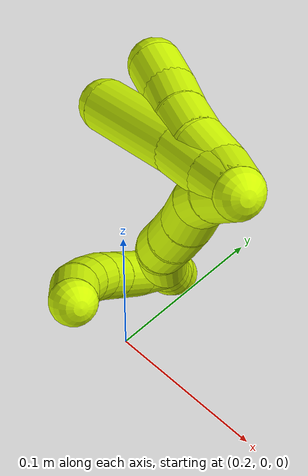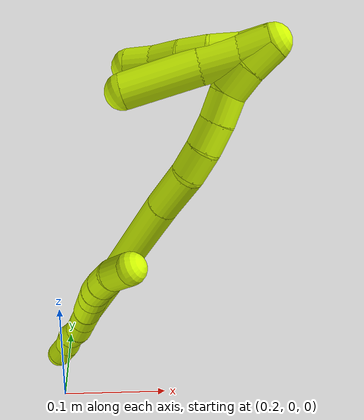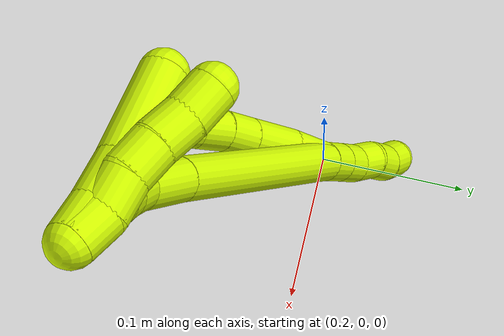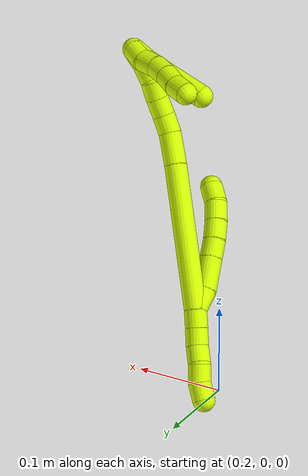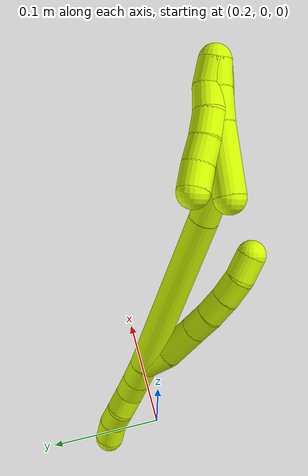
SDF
<sdf version="1.7">
 <world name="default">
  <model name="15">
   <static>0</static>
   <link name="15">
    <collision name="collision-cylinder-e_1_2_8">
     <pose>0.009753 -0.004963 0.007094 0.610483 0.844768 0.281353</pose>
     <geometry><cylinder><radius>0.0125</radius><length>0.026083</length></cylinder></geometry>
     <surface>
      <friction><ode><mu>1.16</mu><mu2>1.16</mu2><slip1>0</slip1><slip2>0</slip2></ode></friction>
      <contact><ode><kp>1e+06</kp><kd>1</kd><max_vel>0</max_vel><min_depth>0.001</min_depth></ode></contact>
     </surface>
    </collision>
    <visual name="visual-cylinder-e_1_2_8">
     <pose>0.009753 -0.004963 0.007094 0.610483 0.844768 0.281353</pose>
     <geometry><cylinder><radius>0.0125</radius><length>0.026083</length></cylinder></geometry>
     <material><ambient>0.835294 1 0 1</ambient></material>
    </visual>
    <collision name="collision-cylinder-e_2_8_9">
     <pose>0.028893 -0.01855 0.027599 0.571433 0.532168 0.159782</pose>
     <geometry><cylinder><radius>0.0125</radius><length>0.037003</length></cylinder></geometry>
     <surface>
      <friction><ode><mu>1.16</mu><mu2>1.16</mu2><slip1>0</slip1><slip2>0</slip2></ode></friction>
      <contact><ode><kp>1e+06</kp><kd>1</kd><max_vel>0</max_vel><min_depth>0.001</min_depth></ode></contact>
     </surface>
    </collision>
    <visual name="visual-cylinder-e_2_8_9">
     <pose>0.028893 -0.01855 0.027599 0.571433 0.532168 0.159782</pose>
     <geometry><cylinder><radius>0.0125</radius><length>0.037003</length></cylinder></geometry>
     <material><ambient>0.835294 1 0 1</ambient></material>
    </visual>
    <collision name="collision-cylinder-e_3_9_10">
     <pose>0.043757 -0.032136 0.04864 0.576705 0.541503 0.164293</pose>
     <geometry><cylinder><radius>0.0125</radius><length>0.021247</length></cylinder></geometry>
     <surface>
      <friction><ode><mu>1.16</mu><mu2>1.16</mu2><slip1>0</slip1><slip2>0</slip2></ode></friction>
      <contact><ode><kp>1e+06</kp><kd>1</kd><max_vel>0</max_vel><min_depth>0.001</min_depth></ode></contact>
     </surface>
    </collision>
    <visual name="visual-cylinder-e_3_9_10">
     <pose>0.043757 -0.032136 0.04864 0.576705 0.541503 0.164293</pose>
     <geometry><cylinder><radius>0.0125</radius><length>0.021247</length></cylinder></geometry>
     <material><ambient>0.835294 1 0 1</ambient></material>
    </visual>
    <collision name="collision-cylinder-e_4_10_11">
     <pose>0.054526 -0.041354 0.064898 0.458173 0.503161 0.119724</pose>
     <geometry><cylinder><radius>0.0125</radius><length>0.021957</length></cylinder></geometry>
     <surface>
      <friction><ode><mu>1.16</mu><mu2>1.16</mu2><slip1>0</slip1><slip2>0</slip2></ode></friction>
      <contact><ode><kp>1e+06</kp><kd>1</kd><max_vel>0</max_vel><min_depth>0.001</min_depth></ode></contact>
     </surface>
    </collision>
    <visual name="visual-cylinder-e_4_10_11">
     <pose>0.054526 -0.041354 0.064898 0.458173 0.503161 0.119724</pose>
     <geometry><cylinder><radius>0.0125</radius><length>0.021957</length></cylinder></geometry>
     <material><ambient>0.835294 1 0 1</ambient></material>
    </visual>
    <collision name="collision-cylinder-e_5_11_12">
     <pose>0.064507 -0.049286 0.082803 0.377352 0.439029 0.085153</pose>
     <geometry><cylinder><radius>0.0125</radius><length>0.022056</length></cylinder></geometry>
     <surface>
      <friction><ode><mu>1.16</mu><mu2>1.16</mu2><slip1>0</slip1><slip2>0</slip2></ode></friction>
      <contact><ode><kp>1e+06</kp><kd>1</kd><max_vel>0</max_vel><min_depth>0.001</min_depth></ode></contact>
     </surface>
    </collision>
    <visual name="visual-cylinder-e_5_11_12">
     <pose>0.064507 -0.049286 0.082803 0.377352 0.439029 0.085153</pose>
     <geometry><cylinder><radius>0.0125</radius><length>0.022056</length></cylinder></geometry>
     <material><ambient>0.835294 1 0 1</ambient></material>
    </visual>
    <collision name="collision-cylinder-e_6_12_6">
     <pose>0.072891 -0.053957 0.102211 0.097731 0.348434 0.017214</pose>
     <geometry><cylinder><radius>0.0125</radius><length>0.021654</length></cylinder></geometry>
     <surface>
      <friction><ode><mu>1.16</mu><mu2>1.16</mu2><slip1>0</slip1><slip2>0</slip2></ode></friction>
      <contact><ode><kp>1e+06</kp><kd>1</kd><max_vel>0</max_vel><min_depth>0.001</min_depth></ode></contact>
     </surface>
    </collision>
    <visual name="visual-cylinder-e_6_12_6">
     <pose>0.072891 -0.053957 0.102211 0.097731 0.348434 0.017214</pose>
     <geometry><cylinder><radius>0.0125</radius><length>0.021654</length></cylinder></geometry>
     <material><ambient>0.835294 1 0 1</ambient></material>
    </visual>
    <collision name="collision-cylinder-e_1_2_13">
     <pose>-0.002311 0.005072 -0.008302 -2.59315 -0.233238 0.789217</pose>
     <geometry><cylinder><radius>0.0125</radius><length>0.02</length></cylinder></geometry>
     <surface>
      <friction><ode><mu>1.16</mu><mu2>1.16</mu2><slip1>0</slip1><slip2>0</slip2></ode></friction>
      <contact><ode><kp>1e+06</kp><kd>1</kd><max_vel>0</max_vel><min_depth>0.001</min_depth></ode></contact>
     </surface>
    </collision>
    <visual name="visual-cylinder-e_1_2_13">
     <pose>-0.002311 0.005072 -0.008302 -2.59315 -0.233238 0.789217</pose>
     <geometry><cylinder><radius>0.0125</radius><length>0.02</length></cylinder></geometry>
     <material><ambient>0.835294 1 0 1</ambient></material>
    </visual>
    <collision name="collision-cylinder-e_2_13_14">
     <pose>-0.007123 0.015297 -0.024802 -2.5805 -0.252721 0.830485</pose>
     <geometry><cylinder><radius>0.0125</radius><length>0.02</length></cylinder></geometry>
     <surface>
      <friction><ode><mu>1.16</mu><mu2>1.16</mu2><slip1>0</slip1><slip2>0</slip2></ode></friction>
      <contact><ode><kp>1e+06</kp><kd>1</kd><max_vel>0</max_vel><min_depth>0.001</min_depth></ode></contact>
     </surface>
    </collision>
    <visual name="visual-cylinder-e_2_13_14">
     <pose>-0.007123 0.015297 -0.024802 -2.5805 -0.252721 0.830485</pose>
     <geometry><cylinder><radius>0.0125</radius><length>0.02</length></cylinder></geometry>
     <material><ambient>0.835294 1 0 1</ambient></material>
    </visual>
    <collision name="collision-cylinder-e_3_14_15">
     <pose>-0.01294 0.023421 -0.041954 -2.82115 -0.338042 1.62522</pose>
     <geometry><cylinder><radius>0.0125</radius><length>0.02</length></cylinder></geometry>
     <surface>
      <friction><ode><mu>1.16</mu><mu2>1.16</mu2><slip1>0</slip1><slip2>0</slip2></ode></friction>
      <contact><ode><kp>1e+06</kp><kd>1</kd><max_vel>0</max_vel><min_depth>0.001</min_depth></ode></contact>
     </surface>
    </collision>
    <visual name="visual-cylinder-e_3_14_15">
     <pose>-0.01294 0.023421 -0.041954 -2.82115 -0.338042 1.62522</pose>
     <geometry><cylinder><radius>0.0125</radius><length>0.02</length></cylinder></geometry>
     <material><ambient>0.835294 1 0 1</ambient></material>
    </visual>
    <collision name="collision-cylinder-e_4_15_16">
     <pose>-0.018841 0.031948 -0.058811 -2.52889 -0.261425 0.787783</pose>
     <geometry><cylinder><radius>0.0125</radius><length>0.02</length></cylinder></geometry>
     <surface>
      <friction><ode><mu>1.16</mu><mu2>1.16</mu2><slip1>0</slip1><slip2>0</slip2></ode></friction>
      <contact><ode><kp>1e+06</kp><kd>1</kd><max_vel>0</max_vel><min_depth>0.001</min_depth></ode></contact>
     </surface>
    </collision>
    <visual name="visual-cylinder-e_4_15_16">
     <pose>-0.018841 0.031948 -0.058811 -2.52889 -0.261425 0.787783</pose>
     <geometry><cylinder><radius>0.0125</radius><length>0.02</length></cylinder></geometry>
     <material><ambient>0.835294 1 0 1</ambient></material>
    </visual>
    <collision name="collision-cylinder-e_5_16_5">
     <pose>-0.022627 0.041384 -0.075851 -2.73994 -0.120432 0.575859</pose>
     <geometry><cylinder><radius>0.0125</radius><length>0.02</length></cylinder></geometry>
     <surface>
      <friction><ode><mu>1.16</mu><mu2>1.16</mu2><slip1>0</slip1><slip2>0</slip2></ode></friction>
      <contact><ode><kp>1e+06</kp><kd>1</kd><max_vel>0</max_vel><min_depth>0.001</min_depth></ode></contact>
     </surface>
    </collision>
    <visual name="visual-cylinder-e_5_16_5">
     <pose>-0.022627 0.041384 -0.075851 -2.73994 -0.120432 0.575859</pose>
     <geometry><cylinder><radius>0.0125</radius><length>0.02</length></cylinder></geometry>
     <material><ambient>0.835294 1 0 1</ambient></material>
    </visual>
    <collision name="collision-cylinder-e_1_2_17">
     <pose>0.016397 -0.035559 0.070477 0.467277 0.204807 0.048902</pose>
     <geometry><cylinder><radius>0.0125</radius><length>0.161248</length></cylinder></geometry>
     <surface>
      <friction><ode><mu>1.16</mu><mu2>1.16</mu2><slip1>0</slip1><slip2>0</slip2></ode></friction>
      <contact><ode><kp>1e+06</kp><kd>1</kd><max_vel>0</max_vel><min_depth>0.001</min_depth></ode></contact>
     </surface>
    </collision>
    <visual name="visual-cylinder-e_1_2_17">
     <pose>0.016397 -0.035559 0.070477 0.467277 0.204807 0.048902</pose>
     <geometry><cylinder><radius>0.0125</radius><length>0.161248</length></cylinder></geometry>
     <material><ambient>0.835294 1 0 1</ambient></material>
    </visual>
    <collision name="collision-cylinder-e_2_17_18">
     <pose>0.036282 -0.078541 0.157374 0.424602 0.191164 0.041325</pose>
     <geometry><cylinder><radius>0.0125</radius><length>0.036709</length></cylinder></geometry>
     <surface>
      <friction><ode><mu>1.16</mu><mu2>1.16</mu2><slip1>0</slip1><slip2>0</slip2></ode></friction>
      <contact><ode><kp>1e+06</kp><kd>1</kd><max_vel>0</max_vel><min_depth>0.001</min_depth></ode></contact>
     </surface>
    </collision>
    <visual name="visual-cylinder-e_2_17_18">
     <pose>0.036282 -0.078541 0.157374 0.424602 0.191164 0.041325</pose>
     <geometry><cylinder><radius>0.0125</radius><length>0.036709</length></cylinder></geometry>
     <material><ambient>0.835294 1 0 1</ambient></material>
    </visual>
    <collision name="collision-cylinder-e_3_18_19">
     <pose>0.038859 -0.091042 0.183188 0.495515 -0.085045 -0.021525</pose>
     <geometry><cylinder><radius>0.0125</radius><length>0.021436</length></cylinder></geometry>
     <surface>
      <friction><ode><mu>1.16</mu><mu2>1.16</mu2><slip1>0</slip1><slip2>0</slip2></ode></friction>
      <contact><ode><kp>1e+06</kp><kd>1</kd><max_vel>0</max_vel><min_depth>0.001</min_depth></ode></contact>
     </surface>
    </collision>
    <visual name="visual-cylinder-e_3_18_19">
     <pose>0.038859 -0.091042 0.183188 0.495515 -0.085045 -0.021525</pose>
     <geometry><cylinder><radius>0.0125</radius><length>0.021436</length></cylinder></geometry>
     <material><ambient>0.835294 1 0 1</ambient></material>
    </visual>
    <collision name="collision-cylinder-e_4_19_20">
     <pose>0.035777 -0.101618 0.200934 0.5822 -0.213875 -0.064303</pose>
     <geometry><cylinder><radius>0.0125</radius><length>0.020464</length></cylinder></geometry>
     <surface>
      <friction><ode><mu>1.16</mu><mu2>1.16</mu2><slip1>0</slip1><slip2>0</slip2></ode></friction>
      <contact><ode><kp>1e+06</kp><kd>1</kd><max_vel>0</max_vel><min_depth>0.001</min_depth></ode></contact>
     </surface>
    </collision>
    <visual name="visual-cylinder-e_4_19_20">
     <pose>0.035777 -0.101618 0.200934 0.5822 -0.213875 -0.064303</pose>
     <geometry><cylinder><radius>0.0125</radius><length>0.020464</length></cylinder></geometry>
     <material><ambient>0.835294 1 0 1</ambient></material>
    </visual>
    <collision name="collision-cylinder-e_5_20_21">
     <pose>0.031506 -0.113338 0.216908 0.684577 -0.210218 -0.075145</pose>
     <geometry><cylinder><radius>0.0125</radius><length>0.020122</length></cylinder></geometry>
     <surface>
      <friction><ode><mu>1.16</mu><mu2>1.16</mu2><slip1>0</slip1><slip2>0</slip2></ode></friction>
      <contact><ode><kp>1e+06</kp><kd>1</kd><max_vel>0</max_vel><min_depth>0.001</min_depth></ode></contact>
     </surface>
    </collision>
    <visual name="visual-cylinder-e_5_20_21">
     <pose>0.031506 -0.113338 0.216908 0.684577 -0.210218 -0.075145</pose>
     <geometry><cylinder><radius>0.0125</radius><length>0.020122</length></cylinder></geometry>
     <material><ambient>0.835294 1 0 1</ambient></material>
    </visual>
    <collision name="collision-cylinder-e_6_21_22">
     <pose>0.028226 -0.123184 0.233778 0.373557 -0.118264 -0.022375</pose>
     <geometry><cylinder><radius>0.0125</radius><length>0.020003</length></cylinder></geometry>
     <surface>
      <friction><ode><mu>1.16</mu><mu2>1.16</mu2><slip1>0</slip1><slip2>0</slip2></ode></friction>
      <contact><ode><kp>1e+06</kp><kd>1</kd><max_vel>0</max_vel><min_depth>0.001</min_depth></ode></contact>
     </surface>
    </collision>
    <visual name="visual-cylinder-e_6_21_22">
     <pose>0.028226 -0.123184 0.233778 0.373557 -0.118264 -0.022375</pose>
     <geometry><cylinder><radius>0.0125</radius><length>0.020003</length></cylinder></geometry>
     <material><ambient>0.835294 1 0 1</ambient></material>
    </visual>
    <collision name="collision-cylinder-e_7_22_1">
     <pose>0.025188 -0.129037 0.252604 0.228585 -0.186741 -0.021498</pose>
     <geometry><cylinder><radius>0.0125</radius><length>0.020018</length></cylinder></geometry>
     <surface>
      <friction><ode><mu>1.16</mu><mu2>1.16</mu2><slip1>0</slip1><slip2>0</slip2></ode></friction>
      <contact><ode><kp>1e+06</kp><kd>1</kd><max_vel>0</max_vel><min_depth>0.001</min_depth></ode></contact>
     </surface>
    </collision>
    <visual name="visual-cylinder-e_7_22_1">
     <pose>0.025188 -0.129037 0.252604 0.228585 -0.186741 -0.021498</pose>
     <geometry><cylinder><radius>0.0125</radius><length>0.020018</length></cylinder></geometry>
     <material><ambient>0.835294 1 0 1</ambient></material>
    </visual>
    <collision name="collision-cylinder-e_1_1_23">
     <pose>0.021772 -0.133467 0.252553 2.91691 -0.156345 -1.21382</pose>
     <geometry><cylinder><radius>0.0125</radius><length>0.02</length></cylinder></geometry>
     <surface>
      <friction><ode><mu>1.16</mu><mu2>1.16</mu2><slip1>0</slip1><slip2>0</slip2></ode></friction>
      <contact><ode><kp>1e+06</kp><kd>1</kd><max_vel>0</max_vel><min_depth>0.001</min_depth></ode></contact>
     </surface>
    </collision>
    <visual name="visual-cylinder-e_1_1_23">
     <pose>0.021772 -0.133467 0.252553 2.91691 -0.156345 -1.21382</pose>
     <geometry><cylinder><radius>0.0125</radius><length>0.02</length></cylinder></geometry>
     <material><ambient>0.835294 1 0 1</ambient></material>
    </visual>
    <collision name="collision-cylinder-e_2_23_24">
     <pose>0.020644 -0.140422 0.234136 2.64565 0.042869 0.168943</pose>
     <geometry><cylinder><radius>0.0125</radius><length>0.02</length></cylinder></geometry>
     <surface>
      <friction><ode><mu>1.16</mu><mu2>1.16</mu2><slip1>0</slip1><slip2>0</slip2></ode></friction>
      <contact><ode><kp>1e+06</kp><kd>1</kd><max_vel>0</max_vel><min_depth>0.001</min_depth></ode></contact>
     </surface>
    </collision>
    <visual name="visual-cylinder-e_2_23_24">
     <pose>0.020644 -0.140422 0.234136 2.64565 0.042869 0.168943</pose>
     <geometry><cylinder><radius>0.0125</radius><length>0.02</length></cylinder></geometry>
     <material><ambient>0.835294 1 0 1</ambient></material>
    </visual>
    <collision name="collision-cylinder-e_3_24_25">
     <pose>0.019784 -0.148757 0.216101 2.77214 -0.129217 -0.666653</pose>
     <geometry><cylinder><radius>0.0125</radius><length>0.02</length></cylinder></geometry>
     <surface>
      <friction><ode><mu>1.16</mu><mu2>1.16</mu2><slip1>0</slip1><slip2>0</slip2></ode></friction>
      <contact><ode><kp>1e+06</kp><kd>1</kd><max_vel>0</max_vel><min_depth>0.001</min_depth></ode></contact>
     </surface>
    </collision>
    <visual name="visual-cylinder-e_3_24_25">
     <pose>0.019784 -0.148757 0.216101 2.77214 -0.129217 -0.666653</pose>
     <geometry><cylinder><radius>0.0125</radius><length>0.02</length></cylinder></geometry>
     <material><ambient>0.835294 1 0 1</ambient></material>
    </visual>
    <collision name="collision-cylinder-e_4_25_26">
     <pose>0.016338 -0.155125 0.197496 2.85209 -0.217475 -1.2856</pose>
     <geometry><cylinder><radius>0.0125</radius><length>0.02</length></cylinder></geometry>
     <surface>
      <friction><ode><mu>1.16</mu><mu2>1.16</mu2><slip1>0</slip1><slip2>0</slip2></ode></friction>
      <contact><ode><kp>1e+06</kp><kd>1</kd><max_vel>0</max_vel><min_depth>0.001</min_depth></ode></contact>
     </surface>
    </collision>
    <visual name="visual-cylinder-e_4_25_26">
     <pose>0.016338 -0.155125 0.197496 2.85209 -0.217475 -1.2856</pose>
     <geometry><cylinder><radius>0.0125</radius><length>0.02</length></cylinder></geometry>
     <material><ambient>0.835294 1 0 1</ambient></material>
    </visual>
    <collision name="collision-cylinder-e_5_26_4">
     <pose>0.012785 -0.161936 0.17909 2.72324 -0.139995 -0.637999</pose>
     <geometry><cylinder><radius>0.0125</radius><length>0.02</length></cylinder></geometry>
     <surface>
      <friction><ode><mu>1.16</mu><mu2>1.16</mu2><slip1>0</slip1><slip2>0</slip2></ode></friction>
      <contact><ode><kp>1e+06</kp><kd>1</kd><max_vel>0</max_vel><min_depth>0.001</min_depth></ode></contact>
     </surface>
    </collision>
    <visual name="visual-cylinder-e_5_26_4">
     <pose>0.012785 -0.161936 0.17909 2.72324 -0.139995 -0.637999</pose>
     <geometry><cylinder><radius>0.0125</radius><length>0.02</length></cylinder></geometry>
     <material><ambient>0.835294 1 0 1</ambient></material>
    </visual>
    <collision name="collision-cylinder-e_1_1_27">
     <pose>0.024169 -0.133354 0.25206 2.9382 0.08105 0.756412</pose>
     <geometry><cylinder><radius>0.0125</radius><length>0.020739</length></cylinder></geometry>
     <surface>
      <friction><ode><mu>1.16</mu><mu2>1.16</mu2><slip1>0</slip1><slip2>0</slip2></ode></friction>
      <contact><ode><kp>1e+06</kp><kd>1</kd><max_vel>0</max_vel><min_depth>0.001</min_depth></ode></contact>
     </surface>
    </collision>
    <visual name="visual-cylinder-e_1_1_27">
     <pose>0.024169 -0.133354 0.25206 2.9382 0.08105 0.756412</pose>
     <geometry><cylinder><radius>0.0125</radius><length>0.020739</length></cylinder></geometry>
     <material><ambient>0.835294 1 0 1</ambient></material>
    </visual>
    <collision name="collision-cylinder-e_2_27_28">
     <pose>0.026608 -0.139259 0.229638 2.84066 0.123583 0.77492</pose>
     <geometry><cylinder><radius>0.0125</radius><length>0.025956</length></cylinder></geometry>
     <surface>
      <friction><ode><mu>1.16</mu><mu2>1.16</mu2><slip1>0</slip1><slip2>0</slip2></ode></friction>
      <contact><ode><kp>1e+06</kp><kd>1</kd><max_vel>0</max_vel><min_depth>0.001</min_depth></ode></contact>
     </surface>
    </collision>
    <visual name="visual-cylinder-e_2_27_28">
     <pose>0.026608 -0.139259 0.229638 2.84066 0.123583 0.77492</pose>
     <geometry><cylinder><radius>0.0125</radius><length>0.025956</length></cylinder></geometry>
     <material><ambient>0.835294 1 0 1</ambient></material>
    </visual>
    <collision name="collision-cylinder-e_3_28_3">
     <pose>0.033412 -0.150291 0.192213 2.86194 0.196531 1.22205</pose>
     <geometry><cylinder><radius>0.0125</radius><length>0.053305</length></cylinder></geometry>
     <surface>
      <friction><ode><mu>1.16</mu><mu2>1.16</mu2><slip1>0</slip1><slip2>0</slip2></ode></friction>
      <contact><ode><kp>1e+06</kp><kd>1</kd><max_vel>0</max_vel><min_depth>0.001</min_depth></ode></contact>
     </surface>
    </collision>
    <visual name="visual-cylinder-e_3_28_3">
     <pose>0.033412 -0.150291 0.192213 2.86194 0.196531 1.22205</pose>
     <geometry><cylinder><radius>0.0125</radius><length>0.053305</length></cylinder></geometry>
     <material><ambient>0.835294 1 0 1</ambient></material>
    </visual>
    <collision name="collision-sphere-3">
     <pose>0.038617 -0.157506 0.16709 0 -0 0</pose>
     <geometry><sphere><radius>0.0125</radius></sphere></geometry>
     <surface>
      <friction><ode><mu>1.16</mu><mu2>1.16</mu2><slip1>0</slip1><slip2>0</slip2></ode></friction>
      <contact><ode><kp>1e+06</kp><kd>1</kd><max_vel>0</max_vel><min_depth>0.001</min_depth></ode></contact>
     </surface>
    </collision>
    <visual name="visual-sphere-3">
     <pose>0.038617 -0.157506 0.16709 0 -0 0</pose>
     <geometry><sphere><radius>0.0125</radius></sphere></geometry>
     <material><ambient>0.835294 1 0 1</ambient></material>
    </visual>
    <collision name="collision-sphere-28">
     <pose>0.028208 -0.143076 0.217337 0 -0 0</pose>
     <geometry><sphere><radius>0.0125</radius></sphere></geometry>
     <surface>
      <friction><ode><mu>1.16</mu><mu2>1.16</mu2><slip1>0</slip1><slip2>0</slip2></ode></friction>
      <contact><ode><kp>1e+06</kp><kd>1</kd><max_vel>0</max_vel><min_depth>0.001</min_depth></ode></contact>
     </surface>
    </collision>
    <visual name="visual-sphere-28">
     <pose>0.028208 -0.143076 0.217337 0 -0 0</pose>
     <geometry><sphere><radius>0.0125</radius></sphere></geometry>
     <material><ambient>0.835294 1 0 1</ambient></material>
    </visual>
    <collision name="collision-sphere-27">
     <pose>0.025008 -0.135441 0.241938 0 -0 0</pose>
     <geometry><sphere><radius>0.0125</radius></sphere></geometry>
     <surface>
      <friction><ode><mu>1.16</mu><mu2>1.16</mu2><slip1>0</slip1><slip2>0</slip2></ode></friction>
      <contact><ode><kp>1e+06</kp><kd>1</kd><max_vel>0</max_vel><min_depth>0.001</min_depth></ode></contact>
     </surface>
    </collision>
    <visual name="visual-sphere-27">
     <pose>0.025008 -0.135441 0.241938 0 -0 0</pose>
     <geometry><sphere><radius>0.0125</radius></sphere></geometry>
     <material><ambient>0.835294 1 0 1</ambient></material>
    </visual>
    <collision name="collision-sphere-4">
     <pose>0.011389 -0.165958 0.170041 0 -0 0</pose>
     <geometry><sphere><radius>0.0125</radius></sphere></geometry>
     <surface>
      <friction><ode><mu>1.16</mu><mu2>1.16</mu2><slip1>0</slip1><slip2>0</slip2></ode></friction>
      <contact><ode><kp>1e+06</kp><kd>1</kd><max_vel>0</max_vel><min_depth>0.001</min_depth></ode></contact>
     </surface>
    </collision>
    <visual name="visual-sphere-4">
     <pose>0.011389 -0.165958 0.170041 0 -0 0</pose>
     <geometry><sphere><radius>0.0125</radius></sphere></geometry>
     <material><ambient>0.835294 1 0 1</ambient></material>
    </visual>
    <collision name="collision-sphere-26">
     <pose>0.01418 -0.157913 0.188138 0 -0 0</pose>
     <geometry><sphere><radius>0.0125</radius></sphere></geometry>
     <surface>
      <friction><ode><mu>1.16</mu><mu2>1.16</mu2><slip1>0</slip1><slip2>0</slip2></ode></friction>
      <contact><ode><kp>1e+06</kp><kd>1</kd><max_vel>0</max_vel><min_depth>0.001</min_depth></ode></contact>
     </surface>
    </collision>
    <visual name="visual-sphere-26">
     <pose>0.01418 -0.157913 0.188138 0 -0 0</pose>
     <geometry><sphere><radius>0.0125</radius></sphere></geometry>
     <material><ambient>0.835294 1 0 1</ambient></material>
    </visual>
    <collision name="collision-sphere-25">
     <pose>0.018495 -0.152338 0.206854 0 -0 0</pose>
     <geometry><sphere><radius>0.0125</radius></sphere></geometry>
     <surface>
      <friction><ode><mu>1.16</mu><mu2>1.16</mu2><slip1>0</slip1><slip2>0</slip2></ode></friction>
      <contact><ode><kp>1e+06</kp><kd>1</kd><max_vel>0</max_vel><min_depth>0.001</min_depth></ode></contact>
     </surface>
    </collision>
    <visual name="visual-sphere-25">
     <pose>0.018495 -0.152338 0.206854 0 -0 0</pose>
     <geometry><sphere><radius>0.0125</radius></sphere></geometry>
     <material><ambient>0.835294 1 0 1</ambient></material>
    </visual>
    <collision name="collision-sphere-24">
     <pose>0.021072 -0.145176 0.225349 0 -0 0</pose>
     <geometry><sphere><radius>0.0125</radius></sphere></geometry>
     <surface>
      <friction><ode><mu>1.16</mu><mu2>1.16</mu2><slip1>0</slip1><slip2>0</slip2></ode></friction>
      <contact><ode><kp>1e+06</kp><kd>1</kd><max_vel>0</max_vel><min_depth>0.001</min_depth></ode></contact>
     </surface>
    </collision>
    <visual name="visual-sphere-24">
     <pose>0.021072 -0.145176 0.225349 0 -0 0</pose>
     <geometry><sphere><radius>0.0125</radius></sphere></geometry>
     <material><ambient>0.835294 1 0 1</ambient></material>
    </visual>
    <collision name="collision-sphere-23">
     <pose>0.020215 -0.135667 0.242923 0 -0 0</pose>
     <geometry><sphere><radius>0.0125</radius></sphere></geometry>
     <surface>
      <friction><ode><mu>1.16</mu><mu2>1.16</mu2><slip1>0</slip1><slip2>0</slip2></ode></friction>
      <contact><ode><kp>1e+06</kp><kd>1</kd><max_vel>0</max_vel><min_depth>0.001</min_depth></ode></contact>
     </surface>
    </collision>
    <visual name="visual-sphere-23">
     <pose>0.020215 -0.135667 0.242923 0 -0 0</pose>
     <geometry><sphere><radius>0.0125</radius></sphere></geometry>
     <material><ambient>0.835294 1 0 1</ambient></material>
    </visual>
    <collision name="collision-sphere-1">
     <pose>0.023329 -0.131266 0.262183 0 -0 0</pose>
     <geometry><sphere><radius>0.0125</radius></sphere></geometry>
     <surface>
      <friction><ode><mu>1.16</mu><mu2>1.16</mu2><slip1>0</slip1><slip2>0</slip2></ode></friction>
      <contact><ode><kp>1e+06</kp><kd>1</kd><max_vel>0</max_vel><min_depth>0.001</min_depth></ode></contact>
     </surface>
    </collision>
    <visual name="visual-sphere-1">
     <pose>0.023329 -0.131266 0.262183 0 -0 0</pose>
     <geometry><sphere><radius>0.0125</radius></sphere></geometry>
     <material><ambient>0.835294 1 0 1</ambient></material>
    </visual>
    <collision name="collision-sphere-22">
     <pose>0.027046 -0.126809 0.243025 0 -0 0</pose>
     <geometry><sphere><radius>0.0125</radius></sphere></geometry>
     <surface>
      <friction><ode><mu>1.16</mu><mu2>1.16</mu2><slip1>0</slip1><slip2>0</slip2></ode></friction>
      <contact><ode><kp>1e+06</kp><kd>1</kd><max_vel>0</max_vel><min_depth>0.001</min_depth></ode></contact>
     </surface>
    </collision>
    <visual name="visual-sphere-22">
     <pose>0.027046 -0.126809 0.243025 0 -0 0</pose>
     <geometry><sphere><radius>0.0125</radius></sphere></geometry>
     <material><ambient>0.835294 1 0 1</ambient></material>
    </visual>
    <collision name="collision-sphere-21">
     <pose>0.029406 -0.11956 0.224531 0 -0 0</pose>
     <geometry><sphere><radius>0.0125</radius></sphere></geometry>
     <surface>
      <friction><ode><mu>1.16</mu><mu2>1.16</mu2><slip1>0</slip1><slip2>0</slip2></ode></friction>
      <contact><ode><kp>1e+06</kp><kd>1</kd><max_vel>0</max_vel><min_depth>0.001</min_depth></ode></contact>
     </surface>
    </collision>
    <visual name="visual-sphere-21">
     <pose>0.029406 -0.11956 0.224531 0 -0 0</pose>
     <geometry><sphere><radius>0.0125</radius></sphere></geometry>
     <material><ambient>0.835294 1 0 1</ambient></material>
    </visual>
    <collision name="collision-sphere-12">
     <pose>0.069195 -0.052964 0.092083 0 -0 0</pose>
     <geometry><sphere><radius>0.0125</radius></sphere></geometry>
     <surface>
      <friction><ode><mu>1.16</mu><mu2>1.16</mu2><slip1>0</slip1><slip2>0</slip2></ode></friction>
      <contact><ode><kp>1e+06</kp><kd>1</kd><max_vel>0</max_vel><min_depth>0.001</min_depth></ode></contact>
     </surface>
    </collision>
    <visual name="visual-sphere-12">
     <pose>0.069195 -0.052964 0.092083 0 -0 0</pose>
     <geometry><sphere><radius>0.0125</radius></sphere></geometry>
     <material><ambient>0.835294 1 0 1</ambient></material>
    </visual>
    <collision name="collision-sphere-11">
     <pose>0.05982 -0.045608 0.073524 0 -0 0</pose>
     <geometry><sphere><radius>0.0125</radius></sphere></geometry>
     <surface>
      <friction><ode><mu>1.16</mu><mu2>1.16</mu2><slip1>0</slip1><slip2>0</slip2></ode></friction>
      <contact><ode><kp>1e+06</kp><kd>1</kd><max_vel>0</max_vel><min_depth>0.001</min_depth></ode></contact>
     </surface>
    </collision>
    <visual name="visual-sphere-11">
     <pose>0.05982 -0.045608 0.073524 0 -0 0</pose>
     <geometry><sphere><radius>0.0125</radius></sphere></geometry>
     <material><ambient>0.835294 1 0 1</ambient></material>
    </visual>
    <collision name="collision-sphere-10">
     <pose>0.049232 -0.0371 0.056272 0 -0 0</pose>
     <geometry><sphere><radius>0.0125</radius></sphere></geometry>
     <surface>
      <friction><ode><mu>1.16</mu><mu2>1.16</mu2><slip1>0</slip1><slip2>0</slip2></ode></friction>
      <contact><ode><kp>1e+06</kp><kd>1</kd><max_vel>0</max_vel><min_depth>0.001</min_depth></ode></contact>
     </surface>
    </collision>
    <visual name="visual-sphere-10">
     <pose>0.049232 -0.0371 0.056272 0 -0 0</pose>
     <geometry><sphere><radius>0.0125</radius></sphere></geometry>
     <material><ambient>0.835294 1 0 1</ambient></material>
    </visual>
    <collision name="collision-sphere-9">
     <pose>0.038281 -0.027172 0.041009 0 -0 0</pose>
     <geometry><sphere><radius>0.0125</radius></sphere></geometry>
     <surface>
      <friction><ode><mu>1.16</mu><mu2>1.16</mu2><slip1>0</slip1><slip2>0</slip2></ode></friction>
      <contact><ode><kp>1e+06</kp><kd>1</kd><max_vel>0</max_vel><min_depth>0.001</min_depth></ode></contact>
     </surface>
    </collision>
    <visual name="visual-sphere-9">
     <pose>0.038281 -0.027172 0.041009 0 -0 0</pose>
     <geometry><sphere><radius>0.0125</radius></sphere></geometry>
     <material><ambient>0.835294 1 0 1</ambient></material>
    </visual>
    <collision name="collision-sphere-2">
     <geometry><sphere><radius>0.0125</radius></sphere></geometry>
     <surface>
      <friction><ode><mu>1.16</mu><mu2>1.16</mu2><slip1>0</slip1><slip2>0</slip2></ode></friction>
      <contact><ode><kp>1e+06</kp><kd>1</kd><max_vel>0</max_vel><min_depth>0.001</min_depth></ode></contact>
     </surface>
    </collision>
    <visual name="visual-sphere-2">
     <geometry><sphere><radius>0.0125</radius></sphere></geometry>
     <material><ambient>0.835294 1 0 1</ambient></material>
    </visual>
    <collision name="collision-sphere-19">
     <pose>0.037948 -0.09612 0.192583 0 -0 0</pose>
     <geometry><sphere><radius>0.0125</radius></sphere></geometry>
     <surface>
      <friction><ode><mu>1.16</mu><mu2>1.16</mu2><slip1>0</slip1><slip2>0</slip2></ode></friction>
      <contact><ode><kp>1e+06</kp><kd>1</kd><max_vel>0</max_vel><min_depth>0.001</min_depth></ode></contact>
     </surface>
    </collision>
    <visual name="visual-sphere-19">
     <pose>0.037948 -0.09612 0.192583 0 -0 0</pose>
     <geometry><sphere><radius>0.0125</radius></sphere></geometry>
     <material><ambient>0.835294 1 0 1</ambient></material>
    </visual>
    <collision name="collision-sphere-8">
     <pose>0.019505 -0.009927 0.014189 0 -0 0</pose>
     <geometry><sphere><radius>0.0125</radius></sphere></geometry>
     <surface>
      <friction><ode><mu>1.16</mu><mu2>1.16</mu2><slip1>0</slip1><slip2>0</slip2></ode></friction>
      <contact><ode><kp>1e+06</kp><kd>1</kd><max_vel>0</max_vel><min_depth>0.001</min_depth></ode></contact>
     </surface>
    </collision>
    <visual name="visual-sphere-8">
     <pose>0.019505 -0.009927 0.014189 0 -0 0</pose>
     <geometry><sphere><radius>0.0125</radius></sphere></geometry>
     <material><ambient>0.835294 1 0 1</ambient></material>
    </visual>
    <collision name="collision-sphere-6">
     <pose>0.076588 -0.05495 0.112338 0 -0 0</pose>
     <geometry><sphere><radius>0.0125</radius></sphere></geometry>
     <surface>
      <friction><ode><mu>1.16</mu><mu2>1.16</mu2><slip1>0</slip1><slip2>0</slip2></ode></friction>
      <contact><ode><kp>1e+06</kp><kd>1</kd><max_vel>0</max_vel><min_depth>0.001</min_depth></ode></contact>
     </surface>
    </collision>
    <visual name="visual-sphere-6">
     <pose>0.076588 -0.05495 0.112338 0 -0 0</pose>
     <geometry><sphere><radius>0.0125</radius></sphere></geometry>
     <material><ambient>0.835294 1 0 1</ambient></material>
    </visual>
    <collision name="collision-sphere-13">
     <pose>-0.004623 0.010145 -0.016605 0 -0 0</pose>
     <geometry><sphere><radius>0.0125</radius></sphere></geometry>
     <surface>
      <friction><ode><mu>1.16</mu><mu2>1.16</mu2><slip1>0</slip1><slip2>0</slip2></ode></friction>
      <contact><ode><kp>1e+06</kp><kd>1</kd><max_vel>0</max_vel><min_depth>0.001</min_depth></ode></contact>
     </surface>
    </collision>
    <visual name="visual-sphere-13">
     <pose>-0.004623 0.010145 -0.016605 0 -0 0</pose>
     <geometry><sphere><radius>0.0125</radius></sphere></geometry>
     <material><ambient>0.835294 1 0 1</ambient></material>
    </visual>
    <collision name="collision-sphere-14">
     <pose>-0.009623 0.020449 -0.033 0 -0 0</pose>
     <geometry><sphere><radius>0.0125</radius></sphere></geometry>
     <surface>
      <friction><ode><mu>1.16</mu><mu2>1.16</mu2><slip1>0</slip1><slip2>0</slip2></ode></friction>
      <contact><ode><kp>1e+06</kp><kd>1</kd><max_vel>0</max_vel><min_depth>0.001</min_depth></ode></contact>
     </surface>
    </collision>
    <visual name="visual-sphere-14">
     <pose>-0.009623 0.020449 -0.033 0 -0 0</pose>
     <geometry><sphere><radius>0.0125</radius></sphere></geometry>
     <material><ambient>0.835294 1 0 1</ambient></material>
    </visual>
    <collision name="collision-sphere-15">
     <pose>-0.016256 0.026392 -0.050908 0 -0 0</pose>
     <geometry><sphere><radius>0.0125</radius></sphere></geometry>
     <surface>
      <friction><ode><mu>1.16</mu><mu2>1.16</mu2><slip1>0</slip1><slip2>0</slip2></ode></friction>
      <contact><ode><kp>1e+06</kp><kd>1</kd><max_vel>0</max_vel><min_depth>0.001</min_depth></ode></contact>
     </surface>
    </collision>
    <visual name="visual-sphere-15">
     <pose>-0.016256 0.026392 -0.050908 0 -0 0</pose>
     <geometry><sphere><radius>0.0125</radius></sphere></geometry>
     <material><ambient>0.835294 1 0 1</ambient></material>
    </visual>
    <collision name="collision-sphere-16">
     <pose>-0.021425 0.037503 -0.066714 0 -0 0</pose>
     <geometry><sphere><radius>0.0125</radius></sphere></geometry>
     <surface>
      <friction><ode><mu>1.16</mu><mu2>1.16</mu2><slip1>0</slip1><slip2>0</slip2></ode></friction>
      <contact><ode><kp>1e+06</kp><kd>1</kd><max_vel>0</max_vel><min_depth>0.001</min_depth></ode></contact>
     </surface>
    </collision>
    <visual name="visual-sphere-16">
     <pose>-0.021425 0.037503 -0.066714 0 -0 0</pose>
     <geometry><sphere><radius>0.0125</radius></sphere></geometry>
     <material><ambient>0.835294 1 0 1</ambient></material>
    </visual>
    <collision name="collision-sphere-5">
     <pose>-0.023828 0.045265 -0.084989 0 -0 0</pose>
     <geometry><sphere><radius>0.0125</radius></sphere></geometry>
     <surface>
      <friction><ode><mu>1.16</mu><mu2>1.16</mu2><slip1>0</slip1><slip2>0</slip2></ode></friction>
      <contact><ode><kp>1e+06</kp><kd>1</kd><max_vel>0</max_vel><min_depth>0.001</min_depth></ode></contact>
     </surface>
    </collision>
    <visual name="visual-sphere-5">
     <pose>-0.023828 0.045265 -0.084989 0 -0 0</pose>
     <geometry><sphere><radius>0.0125</radius></sphere></geometry>
     <material><ambient>0.835294 1 0 1</ambient></material>
    </visual>
    <collision name="collision-sphere-17">
     <pose>0.032794 -0.071117 0.140954 0 -0 0</pose>
     <geometry><sphere><radius>0.0125</radius></sphere></geometry>
     <surface>
      <friction><ode><mu>1.16</mu><mu2>1.16</mu2><slip1>0</slip1><slip2>0</slip2></ode></friction>
      <contact><ode><kp>1e+06</kp><kd>1</kd><max_vel>0</max_vel><min_depth>0.001</min_depth></ode></contact>
     </surface>
    </collision>
    <visual name="visual-sphere-17">
     <pose>0.032794 -0.071117 0.140954 0 -0 0</pose>
     <geometry><sphere><radius>0.0125</radius></sphere></geometry>
     <material><ambient>0.835294 1 0 1</ambient></material>
    </visual>
    <collision name="collision-sphere-18">
     <pose>0.039769 -0.085964 0.173794 0 -0 0</pose>
     <geometry><sphere><radius>0.0125</radius></sphere></geometry>
     <surface>
      <friction><ode><mu>1.16</mu><mu2>1.16</mu2><slip1>0</slip1><slip2>0</slip2></ode></friction>
      <contact><ode><kp>1e+06</kp><kd>1</kd><max_vel>0</max_vel><min_depth>0.001</min_depth></ode></contact>
     </surface>
    </collision>
    <visual name="visual-sphere-18">
     <pose>0.039769 -0.085964 0.173794 0 -0 0</pose>
     <geometry><sphere><radius>0.0125</radius></sphere></geometry>
     <material><ambient>0.835294 1 0 1</ambient></material>
    </visual>
    <collision name="collision-sphere-20">
     <pose>0.033605 -0.107116 0.209286 0 -0 0</pose>
     <geometry><sphere><radius>0.0125</radius></sphere></geometry>
     <surface>
      <friction><ode><mu>1.16</mu><mu2>1.16</mu2><slip1>0</slip1><slip2>0</slip2></ode></friction>
      <contact><ode><kp>1e+06</kp><kd>1</kd><max_vel>0</max_vel><min_depth>0.001</min_depth></ode></contact>
     </surface>
    </collision>
    <visual name="visual-sphere-20">
     <pose>0.033605 -0.107116 0.209286 0 -0 0</pose>
     <geometry><sphere><radius>0.0125</radius></sphere></geometry>
     <material><ambient>0.835294 1 0 1</ambient></material>
    </visual>
    <inertial>
     <pose>0.022957 -0.068641 0.114412 0 -0 0</pose>
     <mass>0.75</mass>
     <inertia><ixx>0.000432</ixx><ixy>0</ixy><ixz>0</ixz><iyy>0.000351</iyy><iyz>0</iyz><izz>0.0001</izz></inertia>
    </inertial>
   </link>
   <pose>0.226614 0.005723 0.09461 -0.982716 0.092548 -1.8479</pose>
  </model>
 </world>
</sdf>
